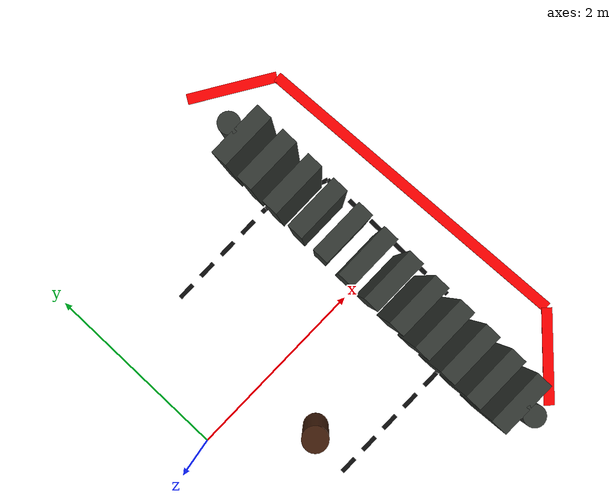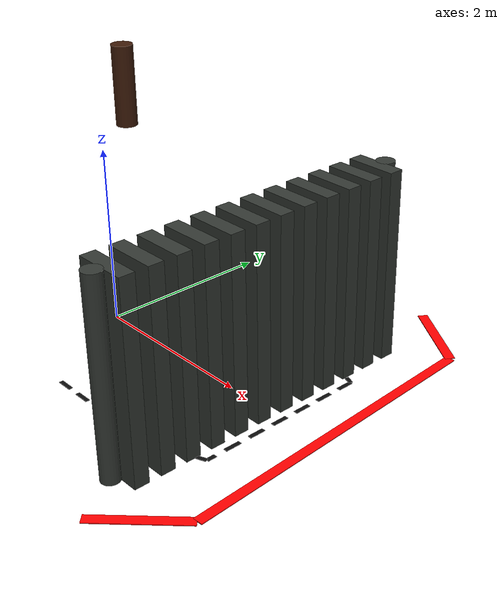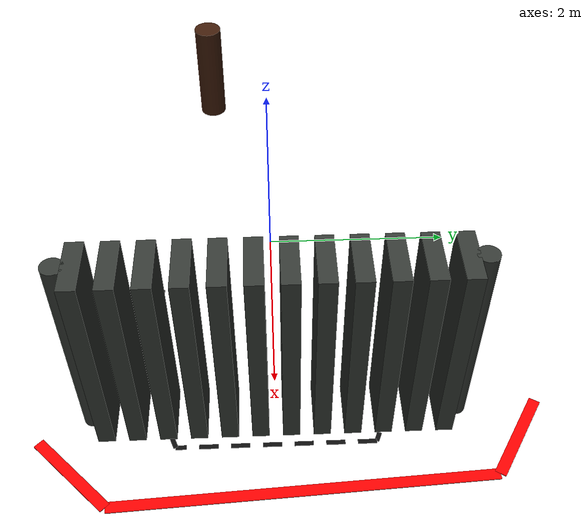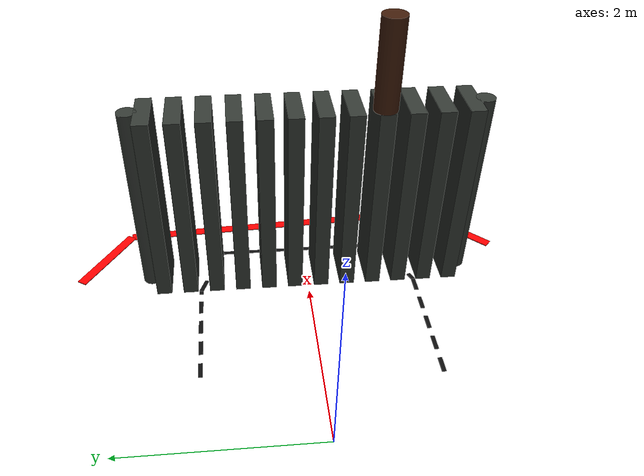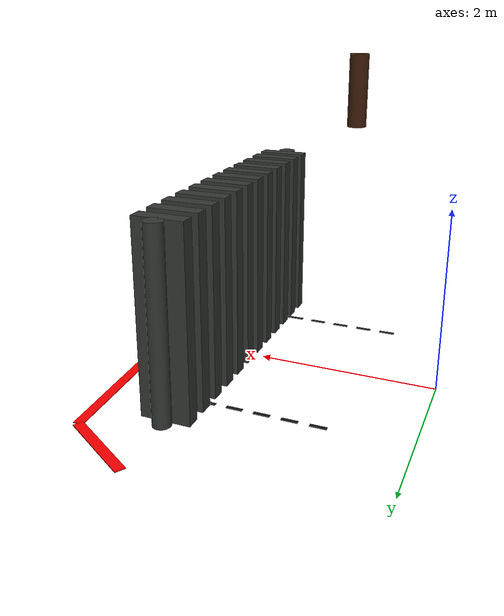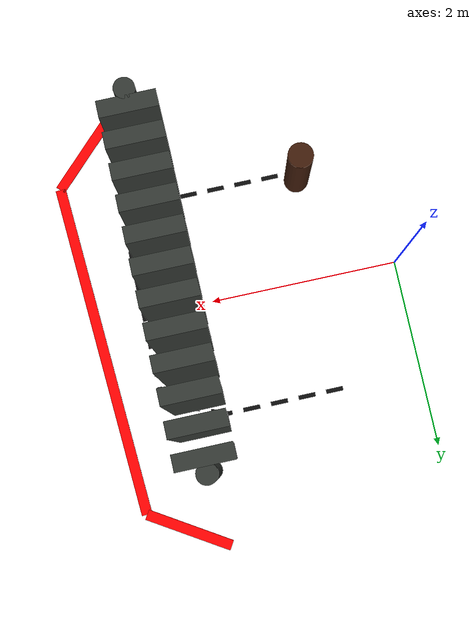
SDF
<sdf version="1.6">
 <world name="transformer_iec_world">
  <model name="radiator_fin_0">
   <static>true</static>
   <pose>2.37500 -1.60417 1.05000 0 0 0</pose>
   <link name="link">
    <collision name="collision"><geometry><box><size>0.55000 0.16042 2.10000</size></box></geometry></collision>
    <visual name="visual">
     <geometry><box><size>0.55000 0.16042 2.10000</size></box></geometry>
     <material><ambient>0.20 0.22 0.20 1</ambient><diffuse>0.20 0.22 0.20 1</diffuse></material>
    </visual>
   </link>
  </model>
  <model name="radiator_fin_1">
   <static>true</static>
   <pose>2.37500 -1.31250 1.05000 0 0 0</pose>
   <link name="link">
    <collision name="collision"><geometry><box><size>0.55000 0.16042 2.10000</size></box></geometry></collision>
    <visual name="visual">
     <geometry><box><size>0.55000 0.16042 2.10000</size></box></geometry>
     <material><ambient>0.20 0.22 0.20 1</ambient><diffuse>0.20 0.22 0.20 1</diffuse></material>
    </visual>
   </link>
  </model>
  <model name="radiator_fin_2">
   <static>true</static>
   <pose>2.37500 -1.02083 1.05000 0 0 0</pose>
   <link name="link">
    <collision name="collision"><geometry><box><size>0.55000 0.16042 2.10000</size></box></geometry></collision>
    <visual name="visual">
     <geometry><box><size>0.55000 0.16042 2.10000</size></box></geometry>
     <material><ambient>0.20 0.22 0.20 1</ambient><diffuse>0.20 0.22 0.20 1</diffuse></material>
    </visual>
   </link>
  </model>
  <model name="radiator_fin_3">
   <static>true</static>
   <pose>2.37500 -0.72917 1.05000 0 0 0</pose>
   <link name="link">
    <collision name="collision"><geometry><box><size>0.55000 0.16042 2.10000</size></box></geometry></collision>
    <visual name="visual">
     <geometry><box><size>0.55000 0.16042 2.10000</size></box></geometry>
     <material><ambient>0.20 0.22 0.20 1</ambient><diffuse>0.20 0.22 0.20 1</diffuse></material>
    </visual>
   </link>
  </model>
  <model name="radiator_fin_4">
   <static>true</static>
   <pose>2.37500 -0.43750 1.05000 0 0 0</pose>
   <link name="link">
    <collision name="collision"><geometry><box><size>0.55000 0.16042 2.10000</size></box></geometry></collision>
    <visual name="visual">
     <geometry><box><size>0.55000 0.16042 2.10000</size></box></geometry>
     <material><ambient>0.20 0.22 0.20 1</ambient><diffuse>0.20 0.22 0.20 1</diffuse></material>
    </visual>
   </link>
  </model>
  <model name="radiator_fin_5">
   <static>true</static>
   <pose>2.37500 -0.14583 1.05000 0 0 0</pose>
   <link name="link">
    <collision name="collision"><geometry><box><size>0.55000 0.16042 2.10000</size></box></geometry></collision>
    <visual name="visual">
     <geometry><box><size>0.55000 0.16042 2.10000</size></box></geometry>
     <material><ambient>0.20 0.22 0.20 1</ambient><diffuse>0.20 0.22 0.20 1</diffuse></material>
    </visual>
   </link>
  </model>
  <model name="radiator_fin_6">
   <static>true</static>
   <pose>2.37500 0.14583 1.05000 0 0 0</pose>
   <link name="link">
    <collision name="collision"><geometry><box><size>0.55000 0.16042 2.10000</size></box></geometry></collision>
    <visual name="visual">
     <geometry><box><size>0.55000 0.16042 2.10000</size></box></geometry>
     <material><ambient>0.20 0.22 0.20 1</ambient><diffuse>0.20 0.22 0.20 1</diffuse></material>
    </visual>
   </link>
  </model>
  <model name="radiator_fin_7">
   <static>true</static>
   <pose>2.37500 0.43750 1.05000 0 0 0</pose>
   <link name="link">
    <collision name="collision"><geometry><box><size>0.55000 0.16042 2.10000</size></box></geometry></collision>
    <visual name="visual">
     <geometry><box><size>0.55000 0.16042 2.10000</size></box></geometry>
     <material><ambient>0.20 0.22 0.20 1</ambient><diffuse>0.20 0.22 0.20 1</diffuse></material>
    </visual>
   </link>
  </model>
  <model name="radiator_fin_8">
   <static>true</static>
   <pose>2.37500 0.72917 1.05000 0 0 0</pose>
   <link name="link">
    <collision name="collision"><geometry><box><size>0.55000 0.16042 2.10000</size></box></geometry></collision>
    <visual name="visual">
     <geometry><box><size>0.55000 0.16042 2.10000</size></box></geometry>
     <material><ambient>0.20 0.22 0.20 1</ambient><diffuse>0.20 0.22 0.20 1</diffuse></material>
    </visual>
   </link>
  </model>
  <model name="radiator_fin_9">
   <static>true</static>
   <pose>2.37500 1.02083 1.05000 0 0 0</pose>
   <link name="link">
    <collision name="collision"><geometry><box><size>0.55000 0.16042 2.10000</size></box></geometry></collision>
    <visual name="visual">
     <geometry><box><size>0.55000 0.16042 2.10000</size></box></geometry>
     <material><ambient>0.20 0.22 0.20 1</ambient><diffuse>0.20 0.22 0.20 1</diffuse></material>
    </visual>
   </link>
  </model>
  <model name="radiator_fin_10">
   <static>true</static>
   <pose>2.37500 1.31250 1.05000 0 0 0</pose>
   <link name="link">
    <collision name="collision"><geometry><box><size>0.55000 0.16042 2.10000</size></box></geometry></collision>
    <visual name="visual">
     <geometry><box><size>0.55000 0.16042 2.10000</size></box></geometry>
     <material><ambient>0.20 0.22 0.20 1</ambient><diffuse>0.20 0.22 0.20 1</diffuse></material>
    </visual>
   </link>
  </model>
  <model name="radiator_fin_11">
   <static>true</static>
   <pose>2.37500 1.60417 1.05000 0 0 0</pose>
   <link name="link">
    <collision name="collision"><geometry><box><size>0.55000 0.16042 2.10000</size></box></geometry></collision>
    <visual name="visual">
     <geometry><box><size>0.55000 0.16042 2.10000</size></box></geometry>
     <material><ambient>0.20 0.22 0.20 1</ambient><diffuse>0.20 0.22 0.20 1</diffuse></material>
    </visual>
   </link>
  </model>
  <model name="radiator_header_low">
   <static>true</static>
   <pose>2.37500 -1.75000 1.05000 0.00000 0.00000 0.00000</pose>
   <link name="link">
    <collision name="collision">
     <geometry><cylinder><radius>0.10000</radius><length>2.10000</length></cylinder></geometry>
    </collision>
    <visual name="visual">
     <geometry><cylinder><radius>0.10000</radius><length>2.10000</length></cylinder></geometry>
     <material><ambient>0.20 0.22 0.20 1</ambient><diffuse>0.20 0.22 0.20 1</diffuse></material>
    </visual>
   </link>
  </model>
  <model name="radiator_header_high">
   <static>true</static>
   <pose>2.37500 1.75000 1.05000 0.00000 0.00000 0.00000</pose>
   <link name="link">
    <collision name="collision">
     <geometry><cylinder><radius>0.10000</radius><length>2.10000</length></cylinder></geometry>
    </collision>
    <visual name="visual">
     <geometry><cylinder><radius>0.10000</radius><length>2.10000</length></cylinder></geometry>
     <material><ambient>0.20 0.22 0.20 1</ambient><diffuse>0.20 0.22 0.20 1</diffuse></material>
    </visual>
   </link>
  </model>
  <model name="bushing_3">
   <static>true</static>
   <pose>1.12500 -0.45000 3.05500 0.00000 0.00000 0.00000</pose>
   <link name="link">
    <collision name="collision">
     <geometry><cylinder><radius>0.10000</radius><length>0.75000</length></cylinder></geometry>
    </collision>
    <visual name="visual">
     <geometry><cylinder><radius>0.10000</radius><length>0.75000</length></cylinder></geometry>
     <material><ambient>0.25 0.11 0.04 1</ambient><diffuse>0.25 0.11 0.04 1</diffuse></material>
    </visual>
   </link>
  </model>
  <model name="radiating_boundary_18">
   <static>true</static>
   <pose>0.94000 1.20000 0.00300 0 0 0.00000</pose>
   <link name="link">
    <visual name="visual">
     <cast_shadows>false</cast_shadows>
     <geometry><box><size>0.18000 0.04500 0.00600</size></box></geometry>
     <material>
      <ambient>0.05 0.05 0.05 1</ambient>
      <diffuse>0.05 0.05 0.05 1</diffuse>
      <emissive>0.05 0.05 0.05 1</emissive>
     </material>
    </visual>
   </link>
  </model>
  <model name="radiating_boundary_19">
   <static>true</static>
   <pose>1.24000 1.20000 0.00300 0 0 0.00000</pose>
   <link name="link">
    <visual name="visual">
     <cast_shadows>false</cast_shadows>
     <geometry><box><size>0.18000 0.04500 0.00600</size></box></geometry>
     <material>
      <ambient>0.05 0.05 0.05 1</ambient>
      <diffuse>0.05 0.05 0.05 1</diffuse>
      <emissive>0.05 0.05 0.05 1</emissive>
     </material>
    </visual>
   </link>
  </model>
  <model name="radiating_boundary_20">
   <static>true</static>
   <pose>1.54000 1.20000 0.00300 0 0 0.00000</pose>
   <link name="link">
    <visual name="visual">
     <cast_shadows>false</cast_shadows>
     <geometry><box><size>0.18000 0.04500 0.00600</size></box></geometry>
     <material>
      <ambient>0.05 0.05 0.05 1</ambient>
      <diffuse>0.05 0.05 0.05 1</diffuse>
      <emissive>0.05 0.05 0.05 1</emissive>
     </material>
    </visual>
   </link>
  </model>
  <model name="radiating_boundary_21">
   <static>true</static>
   <pose>1.84000 1.20000 0.00300 0 0 0.00000</pose>
   <link name="link">
    <visual name="visual">
     <cast_shadows>false</cast_shadows>
     <geometry><box><size>0.18000 0.04500 0.00600</size></box></geometry>
     <material>
      <ambient>0.05 0.05 0.05 1</ambient>
      <diffuse>0.05 0.05 0.05 1</diffuse>
      <emissive>0.05 0.05 0.05 1</emissive>
     </material>
    </visual>
   </link>
  </model>
  <model name="radiating_boundary_22">
   <static>true</static>
   <pose>2.07500 1.20000 0.00300 0 0 0.00000</pose>
   <link name="link">
    <visual name="visual">
     <cast_shadows>false</cast_shadows>
     <geometry><box><size>0.05000 0.04500 0.00600</size></box></geometry>
     <material>
      <ambient>0.05 0.05 0.05 1</ambient>
      <diffuse>0.05 0.05 0.05 1</diffuse>
      <emissive>0.05 0.05 0.05 1</emissive>
     </material>
    </visual>
   </link>
  </model>
  <model name="radiating_boundary_23">
   <static>true</static>
   <pose>2.18400 1.16769 0.00300 0 0 -0.36717</pose>
   <link name="link">
    <visual name="visual">
     <cast_shadows>false</cast_shadows>
     <geometry><box><size>0.18000 0.04500 0.00600</size></box></geometry>
     <material>
      <ambient>0.05 0.05 0.05 1</ambient>
      <diffuse>0.05 0.05 0.05 1</diffuse>
      <emissive>0.05 0.05 0.05 1</emissive>
     </material>
    </visual>
   </link>
  </model>
  <model name="radiating_boundary_24">
   <static>true</static>
   <pose>2.46400 1.06000 0.00300 0 0 -0.36717</pose>
   <link name="link">
    <visual name="visual">
     <cast_shadows>false</cast_shadows>
     <geometry><box><size>0.18000 0.04500 0.00600</size></box></geometry>
     <material>
      <ambient>0.05 0.05 0.05 1</ambient>
      <diffuse>0.05 0.05 0.05 1</diffuse>
      <emissive>0.05 0.05 0.05 1</emissive>
     </material>
    </visual>
   </link>
  </model>
  <model name="radiating_boundary_25">
   <static>true</static>
   <pose>2.70500 0.96731 0.00300 0 0 -0.36717</pose>
   <link name="link">
    <visual name="visual">
     <cast_shadows>false</cast_shadows>
     <geometry><box><size>0.09642 0.04500 0.00600</size></box></geometry>
     <material>
      <ambient>0.05 0.05 0.05 1</ambient>
      <diffuse>0.05 0.05 0.05 1</diffuse>
      <emissive>0.05 0.05 0.05 1</emissive>
     </material>
    </visual>
   </link>
  </model>
  <model name="radiating_boundary_26">
   <static>true</static>
   <pose>2.75000 0.86000 0.00300 0 0 -1.57080</pose>
   <link name="link">
    <visual name="visual">
     <cast_shadows>false</cast_shadows>
     <geometry><box><size>0.18000 0.04500 0.00600</size></box></geometry>
     <material>
      <ambient>0.05 0.05 0.05 1</ambient>
      <diffuse>0.05 0.05 0.05 1</diffuse>
      <emissive>0.05 0.05 0.05 1</emissive>
     </material>
    </visual>
   </link>
  </model>
  <model name="radiating_boundary_27">
   <static>true</static>
   <pose>2.75000 0.56000 0.00300 0 0 -1.57080</pose>
   <link name="link">
    <visual name="visual">
     <cast_shadows>false</cast_shadows>
     <geometry><box><size>0.18000 0.04500 0.00600</size></box></geometry>
     <material>
      <ambient>0.05 0.05 0.05 1</ambient>
      <diffuse>0.05 0.05 0.05 1</diffuse>
      <emissive>0.05 0.05 0.05 1</emissive>
     </material>
    </visual>
   </link>
  </model>
  <model name="radiating_boundary_28">
   <static>true</static>
   <pose>2.75000 0.26000 0.00300 0 0 -1.57080</pose>
   <link name="link">
    <visual name="visual">
     <cast_shadows>false</cast_shadows>
     <geometry><box><size>0.18000 0.04500 0.00600</size></box></geometry>
     <material>
      <ambient>0.05 0.05 0.05 1</ambient>
      <diffuse>0.05 0.05 0.05 1</diffuse>
      <emissive>0.05 0.05 0.05 1</emissive>
     </material>
    </visual>
   </link>
  </model>
  <model name="radiating_boundary_29">
   <static>true</static>
   <pose>2.75000 -0.04000 0.00300 0 0 -1.57080</pose>
   <link name="link">
    <visual name="visual">
     <cast_shadows>false</cast_shadows>
     <geometry><box><size>0.18000 0.04500 0.00600</size></box></geometry>
     <material>
      <ambient>0.05 0.05 0.05 1</ambient>
      <diffuse>0.05 0.05 0.05 1</diffuse>
      <emissive>0.05 0.05 0.05 1</emissive>
     </material>
    </visual>
   </link>
  </model>
  <model name="radiating_boundary_30">
   <static>true</static>
   <pose>2.75000 -0.34000 0.00300 0 0 -1.57080</pose>
   <link name="link">
    <visual name="visual">
     <cast_shadows>false</cast_shadows>
     <geometry><box><size>0.18000 0.04500 0.00600</size></box></geometry>
     <material>
      <ambient>0.05 0.05 0.05 1</ambient>
      <diffuse>0.05 0.05 0.05 1</diffuse>
      <emissive>0.05 0.05 0.05 1</emissive>
     </material>
    </visual>
   </link>
  </model>
  <model name="radiating_boundary_31">
   <static>true</static>
   <pose>2.75000 -0.64000 0.00300 0 0 -1.57080</pose>
   <link name="link">
    <visual name="visual">
     <cast_shadows>false</cast_shadows>
     <geometry><box><size>0.18000 0.04500 0.00600</size></box></geometry>
     <material>
      <ambient>0.05 0.05 0.05 1</ambient>
      <diffuse>0.05 0.05 0.05 1</diffuse>
      <emissive>0.05 0.05 0.05 1</emissive>
     </material>
    </visual>
   </link>
  </model>
  <model name="radiating_boundary_32">
   <static>true</static>
   <pose>2.75000 -0.90000 0.00300 0 0 -1.57080</pose>
   <link name="link">
    <visual name="visual">
     <cast_shadows>false</cast_shadows>
     <geometry><box><size>0.10000 0.04500 0.00600</size></box></geometry>
     <material>
      <ambient>0.05 0.05 0.05 1</ambient>
      <diffuse>0.05 0.05 0.05 1</diffuse>
      <emissive>0.05 0.05 0.05 1</emissive>
     </material>
    </visual>
   </link>
  </model>
  <model name="radiating_boundary_33">
   <static>true</static>
   <pose>2.66600 -0.98231 0.00300 0 0 -2.77442</pose>
   <link name="link">
    <visual name="visual">
     <cast_shadows>false</cast_shadows>
     <geometry><box><size>0.18000 0.04500 0.00600</size></box></geometry>
     <material>
      <ambient>0.05 0.05 0.05 1</ambient>
      <diffuse>0.05 0.05 0.05 1</diffuse>
      <emissive>0.05 0.05 0.05 1</emissive>
     </material>
    </visual>
   </link>
  </model>
  <model name="radiating_boundary_34">
   <static>true</static>
   <pose>2.38600 -1.09000 0.00300 0 0 -2.77442</pose>
   <link name="link">
    <visual name="visual">
     <cast_shadows>false</cast_shadows>
     <geometry><box><size>0.18000 0.04500 0.00600</size></box></geometry>
     <material>
      <ambient>0.05 0.05 0.05 1</ambient>
      <diffuse>0.05 0.05 0.05 1</diffuse>
      <emissive>0.05 0.05 0.05 1</emissive>
     </material>
    </visual>
   </link>
  </model>
  <model name="radiating_boundary_35">
   <static>true</static>
   <pose>2.14500 -1.18269 0.00300 0 0 -2.77442</pose>
   <link name="link">
    <visual name="visual">
     <cast_shadows>false</cast_shadows>
     <geometry><box><size>0.09642 0.04500 0.00600</size></box></geometry>
     <material>
      <ambient>0.05 0.05 0.05 1</ambient>
      <diffuse>0.05 0.05 0.05 1</diffuse>
      <emissive>0.05 0.05 0.05 1</emissive>
     </material>
    </visual>
   </link>
  </model>
  <model name="radiating_boundary_36">
   <static>true</static>
   <pose>2.01000 -1.20000 0.00300 0 0 3.14159</pose>
   <link name="link">
    <visual name="visual">
     <cast_shadows>false</cast_shadows>
     <geometry><box><size>0.18000 0.04500 0.00600</size></box></geometry>
     <material>
      <ambient>0.05 0.05 0.05 1</ambient>
      <diffuse>0.05 0.05 0.05 1</diffuse>
      <emissive>0.05 0.05 0.05 1</emissive>
     </material>
    </visual>
   </link>
  </model>
  <model name="radiating_boundary_37">
   <static>true</static>
   <pose>1.71000 -1.20000 0.00300 0 0 3.14159</pose>
   <link name="link">
    <visual name="visual">
     <cast_shadows>false</cast_shadows>
     <geometry><box><size>0.18000 0.04500 0.00600</size></box></geometry>
     <material>
      <ambient>0.05 0.05 0.05 1</ambient>
      <diffuse>0.05 0.05 0.05 1</diffuse>
      <emissive>0.05 0.05 0.05 1</emissive>
     </material>
    </visual>
   </link>
  </model>
  <model name="radiating_boundary_38">
   <static>true</static>
   <pose>1.41000 -1.20000 0.00300 0 0 3.14159</pose>
   <link name="link">
    <visual name="visual">
     <cast_shadows>false</cast_shadows>
     <geometry><box><size>0.18000 0.04500 0.00600</size></box></geometry>
     <material>
      <ambient>0.05 0.05 0.05 1</ambient>
      <diffuse>0.05 0.05 0.05 1</diffuse>
      <emissive>0.05 0.05 0.05 1</emissive>
     </material>
    </visual>
   </link>
  </model>
  <model name="radiating_boundary_39">
   <static>true</static>
   <pose>1.11000 -1.20000 0.00300 0 0 3.14159</pose>
   <link name="link">
    <visual name="visual">
     <cast_shadows>false</cast_shadows>
     <geometry><box><size>0.18000 0.04500 0.00600</size></box></geometry>
     <material>
      <ambient>0.05 0.05 0.05 1</ambient>
      <diffuse>0.05 0.05 0.05 1</diffuse>
      <emissive>0.05 0.05 0.05 1</emissive>
     </material>
    </visual>
   </link>
  </model>
  <model name="radiating_boundary_40">
   <static>true</static>
   <pose>0.81000 -1.20000 0.00300 0 0 3.14159</pose>
   <link name="link">
    <visual name="visual">
     <cast_shadows>false</cast_shadows>
     <geometry><box><size>0.18000 0.04500 0.00600</size></box></geometry>
     <material>
      <ambient>0.05 0.05 0.05 1</ambient>
      <diffuse>0.05 0.05 0.05 1</diffuse>
      <emissive>0.05 0.05 0.05 1</emissive>
     </material>
    </visual>
   </link>
  </model>
  <model name="robot_path_3">
   <static>true</static>
   <pose>2.75000 2.30000 0.00400 0 0 -0.55860</pose>
   <link name="link">
    <visual name="visual">
     <cast_shadows>false</cast_shadows>
     <geometry><box><size>0.94340 0.11000 0.00800</size></box></geometry>
     <material><ambient>1 0 0 1</ambient><diffuse>1 0 0 1</diffuse><emissive>1 0 0 1</emissive></material>
    </visual>
   </link>
  </model>
  <model name="robot_path_4">
   <static>true</static>
   <pose>3.25000 0.25000 0.00400 0 0 -1.51530</pose>
   <link name="link">
    <visual name="visual">
     <cast_shadows>false</cast_shadows>
     <geometry><box><size>3.60555 0.11000 0.00800</size></box></geometry>
     <material><ambient>1 0 0 1</ambient><diffuse>1 0 0 1</diffuse><emissive>1 0 0 1</emissive></material>
    </visual>
   </link>
  </model>
  <model name="robot_path_5">
   <static>true</static>
   <pose>3.00000 -1.90000 0.00400 0 0 -2.35619</pose>
   <link name="link">
    <visual name="visual">
     <cast_shadows>false</cast_shadows>
     <geometry><box><size>0.98995 0.11000 0.00800</size></box></geometry>
     <material><ambient>1 0 0 1</ambient><diffuse>1 0 0 1</diffuse><emissive>1 0 0 1</emissive></material>
    </visual>
   </link>
  </model>
 </world>
</sdf>
